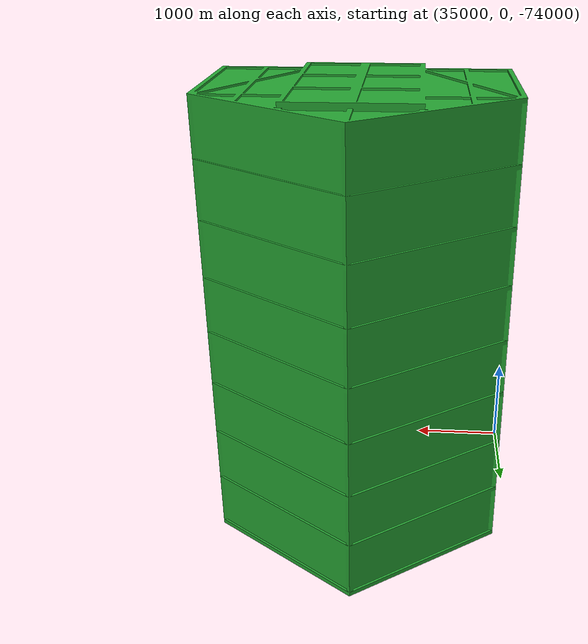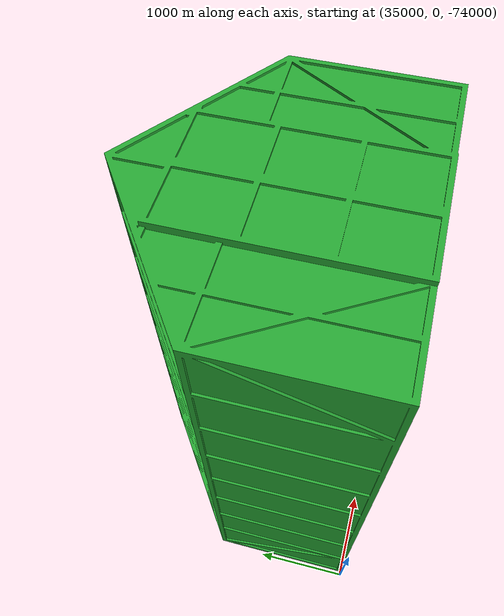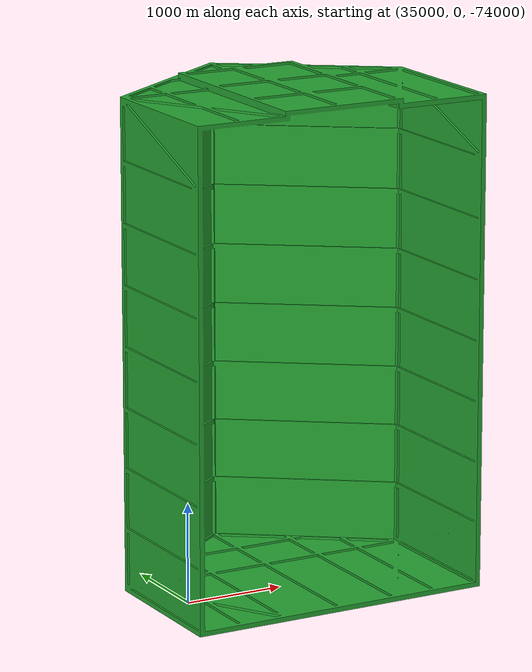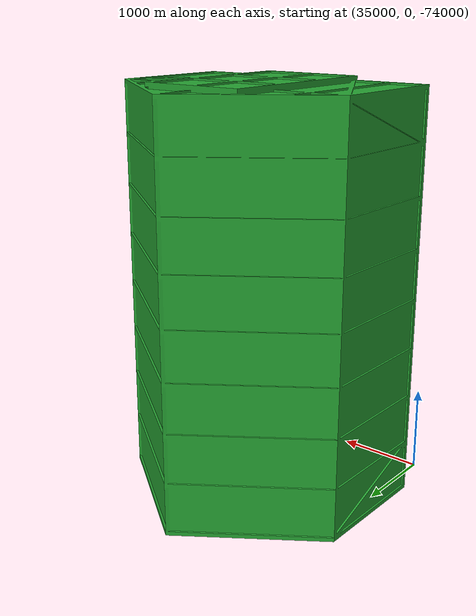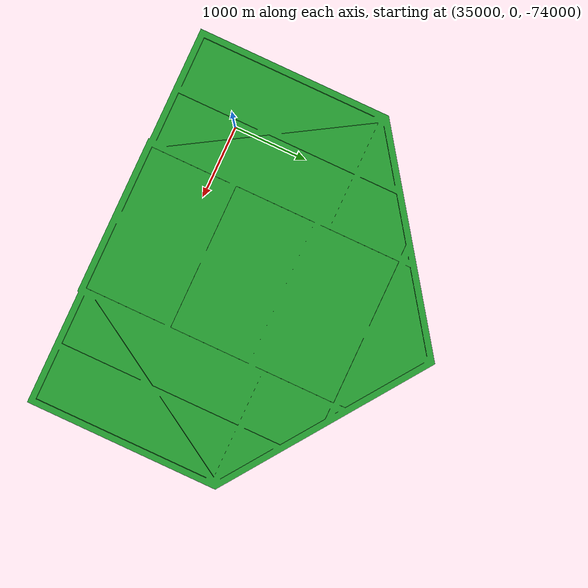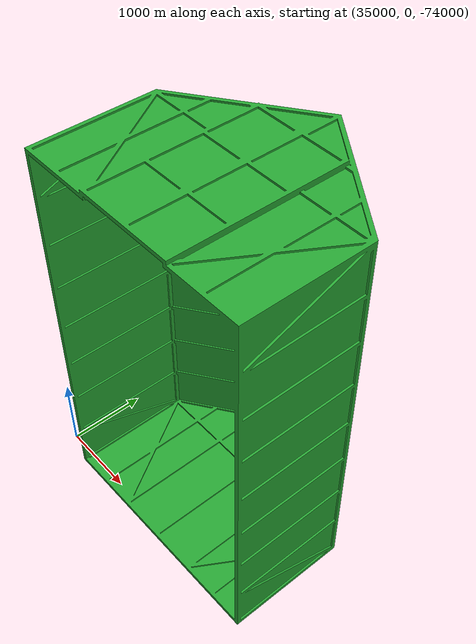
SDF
<?xml version='1.0'?>
<sdf version="1.6">

         <model name="mesh">
             <static>0</static>
             <self_collide>0</self_collide>
             <allow_auto_disable>1</allow_auto_disable>

             <frame name="object_frame">
                 <pose frame="/world">0 0 0 0 -0 0 </pose>
             </frame>

             <pose frame="/world">0 0 0 0 -0 0</pose>

             <link name="link">

                 <gravity>1</gravity>
                 <self_collide>0</self_collide>
                 <kinematic>0</kinematic>

                 <frame name="link_frame">
                     <pose frame="object_frame">0 0 0 0 -0 0</pose>
                 </frame>

                 <!-- red green blue offsets: model pivot point -->
                 <!-- 32 is just half of the voxelgrid dimension (64)-->
                 <pose name="link_frame">-32 -32 -32 0 -0 0</pose>

                 <inertial>
                     <mass>453177570.01</mass>
                     <inertia>
                         <!-- http://gazebosim.org/tutorials?tut=inertia&cat=build_robot -->
                         <ixx>-3.853920667173863e+19</ixx>
                         <ixy>-3.145646629124791e+17</ixy>
                         <ixz>1.988792772848001e+18</ixz>
                         <iyy>-3.8743995573561704e+19</iyy>
                         <iyz>-8592519992528789.0</iyz>
                         <izz>-2.0367911799250125e+17</izz>
                     </inertia>

                     <frame name="link_inertia_frame">
                         <pose frame="link_frame">0 0 0 0 -0 0</pose>
                     </frame>

                     <pose frame="link_inertia_frame">37537.95 26.25 -102893.47 0 0 0                     </pose>
                 </inertial>

                 <collision name="collision">
                     <!--
                         Maximum number of contacts allowed between two entities.
                         This value overrides the max_contacts element defined in physics.
                     -->
                     <max_contacts>20</max_contacts>

                     <!-- A frame of reference to which a pose is relative. -->
                     <frame name="collision_frame">
                         <pose frame="link_frame">0 0 0 0 -0 0</pose>
                     </frame>
                     <!-- A position(x,y,z) and orientation(roll, pitch yaw) with respect to the specified frame. -->
                     <pose frame="collision_frame">0 0 0 0 -0 0</pose>

                     <geometry>
                         <mesh>
                             <uri>package://hunav_gazebo_wrapper/media/models/meshes/greenhouse.stl</uri>
                             <!-- Scaling factor applied to the mesh -->
                             <scale>1.0 1.0 1.0</scale>
                         </mesh>
                     </geometry>
                     <!-- http://sdformat.org/spec?ver=1.6&elem=collision#surface_soft_contact -->
                     <surface></surface>
                 </collision>

                 <visual name="visual">
                     <cast_shadows>1</cast_shadows>
                     <transparency>0</transparency>

                     <frame name="visual_frame">
                         <pose frame="link_frame">0 0 0 0 -0 0</pose>
                     </frame>
                     <pose frame="visual_frame">0 0 0 0 -0 0</pose>

                     <material>

                         <script>
                             <uri>file://media/materials/scripts/gazebo.material</uri>
                             <name>Gazebo/Green</name>
                         </script>
                         <shader type="vertex">
                           <normal_map>__default__</normal_map>
                         </shader>

                         <lighting>1</lighting>
 		                <ambient>0.15 0.75 0.35 1</ambient>
 		                <diffuse>0.1 0.95 0.25 1</diffuse>
 		                <specular>0.01 0.01 0.01 1</specular>
 		                <emissive>0 0 0 1</emissive>
                     </material>

                     <geometry>
                         <mesh>
                             <uri>package://hunav_gazebo_wrapper/media/models/meshes/greenhouse.stl</uri>
                             <!-- Scaling factor applied to the mesh -->
                             <scale>1.0 1.0 1.0</scale>
                         </mesh>
                     </geometry>
                 </visual>
             </link>
         </model>
     </sdf>
